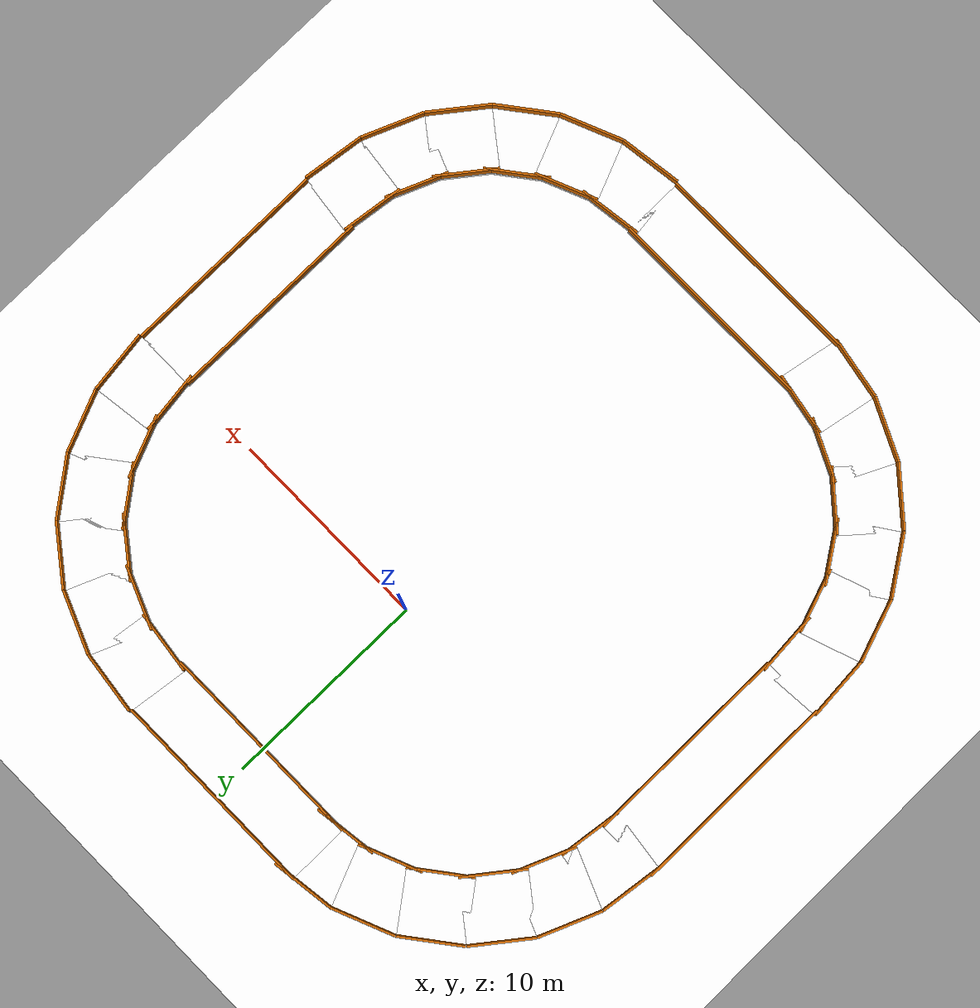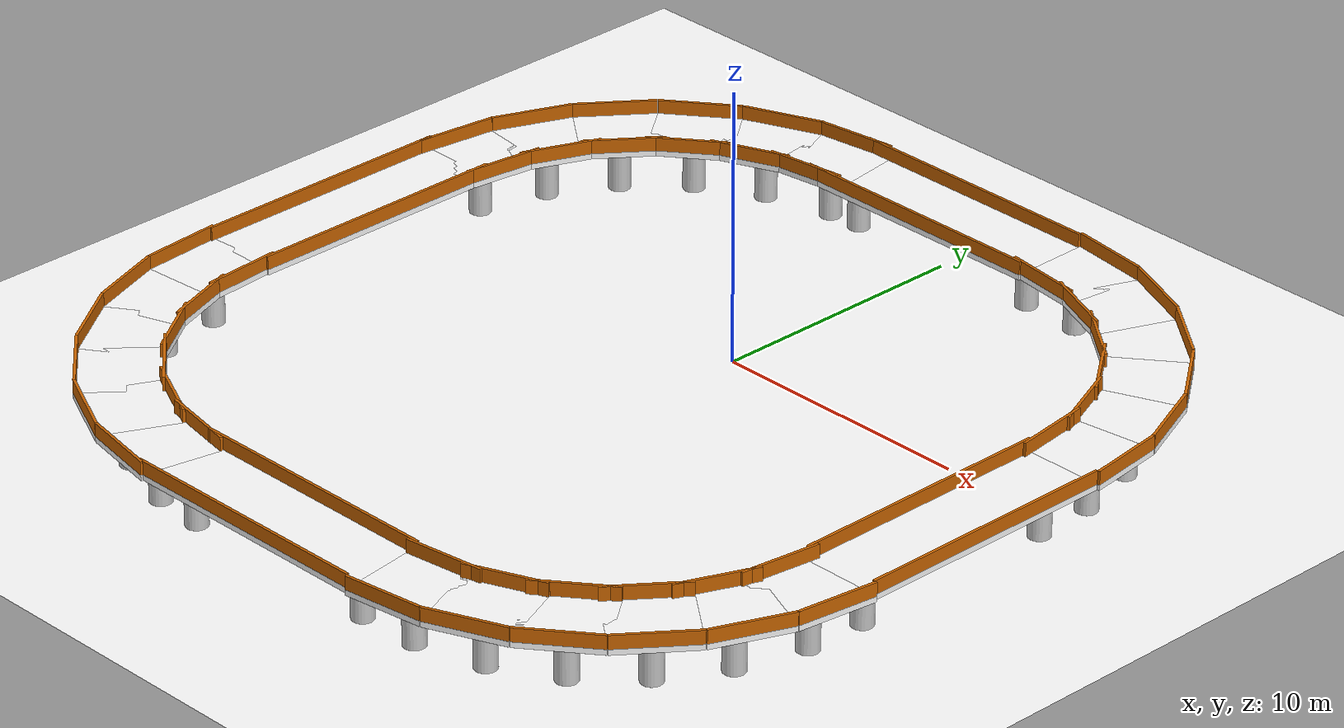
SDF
<?xml version="1.0" ?>
<sdf version="1.8">
  <world name="car_track_world">

    <!-- Core Engine Plugins -->
    <plugin filename="gz-sim-physics-system" name="gz::sim::systems::Physics"/>
    <plugin filename="gz-sim-scene-broadcaster-system" name="gz::sim::systems::SceneBroadcaster"/>
    <plugin filename="gz-sim-user-commands-system" name="gz::sim::systems::UserCommands"/>
    <plugin filename="gz-sim-sensors-system" name="gz::sim::systems::Sensors">
        <render_engine>ogre2</render_engine>
    </plugin>

    <!-- 1. Physics Configuration -->
    <physics name="1ms" type="ode">
      <max_step_size>0.001</max_step_size>
      <real_time_factor>1.0</real_time_factor>
      <gravity>0 0 -9.80665</gravity>
    </physics>

    <!-- 2. Scene Environment -->
    <scene>
      <ambient>0.6 0.6 0.6 1</ambient>
      <background>0.7 0.7 0.7 1</background>
      <shadows>true</shadows>
      <sky>
        <clouds>
          <speed>12</speed>
        </clouds>
      </sky>
    </scene>

    <!-- 3. Global Illumination -->
    <light type="directional" name="main_sun">
      <cast_shadows>true</cast_shadows>
      <pose>0 0 10 0 0 0</pose>
      <diffuse>0.8 0.8 0.8 1</diffuse>
      <specular>0.2 0.2 0.2 1</specular>
      <direction>-0.5 0.1 -0.9</direction>
    </light>

    <!-- 4. Base Ground Plane -->
    <model name="ground_plane">
      <static>true</static>
      <link name="link">
        <collision name="collision">
          <geometry>
            <plane>
              <normal>0 0 1</normal>
              <size>100 100</size>
            </plane>
          </geometry>
        </collision>
        <visual name="visual">
          <geometry>
            <plane>
              <normal>0 0 1</normal>
              <size>100 100</size>
            </plane>
          </geometry>
          <material>
            <ambient>1.0 1.0 1.0 1</ambient>
            <diffuse>1.0 1.0 1.0 1</diffuse>
            <specular>0.1 0.1 0.1 1</specular>
          </material>
        </visual>
      </link>
    </model>

    <!-- Shared Track PBR Material macro logic represented natively -->

    <!-- 6. Bridge 1 -->
    <model name="simple_bridge">
      <pose>0 10 0.0 0 0 0</pose>
      <static>true</static>
      <link name="bridge_surface">
        <pose>0 0 2.0 0 0 0</pose>
        <collision name="surface_col">
          <geometry><box><size>10.0 3.0 0.2</size></box></geometry>
        </collision>
        <visual name="surface_vis">
          <geometry><box><size>10.0 3.0 0.2</size></box></geometry>
          <material>
            <ambient>1.0 1.0 1.0 1</ambient>
            <diffuse>1.0 1.0 1.0 1</diffuse>
            <pbr>
              <metal>
                <albedo_map>lane_texture.png</albedo_map>
                <roughness>0.8</roughness>
                <metalness>0.0</metalness>
              </metal>
            </pbr>
          </material>
        </visual>
        <!-- Walls -->
        <collision name="wall_left_col"><pose>0 1.45 0.35 0 0 0</pose><geometry><box><size>10.0 0.1 0.5</size></box></geometry></collision>
        <visual name="wall_left_vis"><pose>0 1.45 0.35 0 0 0</pose><geometry><box><size>10.0 0.1 0.5</size></box></geometry><material><ambient>0.8 0.4 0.0 1</ambient><diffuse>0.8 0.4 0.0 1</diffuse></material></visual>
        <collision name="wall_right_col"><pose>0 -1.45 0.35 0 0 0</pose><geometry><box><size>10.0 0.1 0.5</size></box></geometry></collision>
        <visual name="wall_right_vis"><pose>0 -1.45 0.35 0 0 0</pose><geometry><box><size>10.0 0.1 0.5</size></box></geometry><material><ambient>0.8 0.4 0.0 1</ambient><diffuse>0.8 0.4 0.0 1</diffuse></material></visual>
      </link>
      <link name="pillar_left">
        <pose>-4.0 0 1.0 0 0 0</pose>
        <collision name="pillar1_col"><geometry><cylinder><radius>0.4</radius><length>2.0</length></cylinder></geometry></collision>
        <visual name="pillar1_vis"><geometry><cylinder><radius>0.4</radius><length>2.0</length></cylinder></geometry><material><ambient>0.8 0.8 0.8 1</ambient><diffuse>0.8 0.8 0.8 1</diffuse></material></visual>
      </link>
      <link name="pillar_right">
        <pose>4.0 0 1.0 0 0 0</pose>
        <collision name="pillar2_col"><geometry><cylinder><radius>0.4</radius><length>2.0</length></cylinder></geometry></collision>
        <visual name="pillar2_vis"><geometry><cylinder><radius>0.4</radius><length>2.0</length></cylinder></geometry><material><ambient>0.8 0.8 0.8 1</ambient><diffuse>0.8 0.8 0.8 1</diffuse></material></visual>
      </link>
    </model>

    <!-- 7. High-Resolution Elevated Curve 1 -->
    <model name="reinforced_curve_track">
      <static>true</static>
      <pose>5 0 0 0 0 0</pose>
      <!-- Loop through segment links using PBR visual properties -->
      <link name="curve_seg_1">
        <pose>9.914 1.305 2.0 0 0 1.7017</pose>
        <collision name="col_1"><geometry><box><size>3.0 3.0 0.2</size></box></geometry></collision>
        <visual name="vis_1">
          <geometry><box><size>3.0 3.0 0.2</size></box></geometry>
          <material><ambient>1 1 1 1</ambient><diffuse>1 1 1 1</diffuse><pbr><metal><albedo_map>lane_texture.png</albedo_map><roughness>0.8</roughness><metalness>0.0</metalness></metal></pbr></material>
        </visual>
        <collision name="wall_left_col"><pose>0 1.45 0.35 0 0 0</pose><geometry><box><size>3.0 0.1 0.5</size></box></geometry></collision>
        <visual name="wall_left_vis"><pose>0 1.45 0.35 0 0 0</pose><geometry><box><size>3.0 0.1 0.5</size></box></geometry><material><ambient>0.8 0.4 0.0 1</ambient><diffuse>0.8 0.4 0.0 1</diffuse></material></visual>
        <collision name="wall_right_col"><pose>0 -1.45 0.35 0 0 0</pose><geometry><box><size>3.0 0.1 0.5</size></box></geometry></collision>
        <visual name="wall_right_vis"><pose>0 -1.45 0.35 0 0 0</pose><geometry><box><size>3.0 0.1 0.5</size></box></geometry><material><ambient>0.8 0.4 0.0 1</ambient><diffuse>0.8 0.4 0.0 1</diffuse></material></visual>
      </link>
      <link name="pillar_1"><pose>9.914 1.305 1.0 0 0 0</pose><collision name="pcol_1"><geometry><cylinder><radius>0.4</radius><length>2.0</length></cylinder></geometry></collision><visual name="pvis_1"><geometry><cylinder><radius>0.4</radius><length>2.0</length></cylinder></geometry><material><ambient>0.8 0.8 0.8 1</ambient><diffuse>0.8 0.8 0.8 1</diffuse></material></visual></link>
      <link name="curve_seg_2">
        <pose>9.239 3.827 2.0 0 0 1.9635</pose>
        <collision name="col_2"><geometry><box><size>3.0 3.0 0.2</size></box></geometry></collision>
        <visual name="vis_2">
          <geometry><box><size>3.0 3.0 0.2</size></box></geometry>
          <material><ambient>1 1 1 1</ambient><diffuse>1 1 1 1</diffuse><pbr><metal><albedo_map>lane_texture.png</albedo_map><roughness>0.8</roughness><metalness>0.0</metalness></metal></pbr></material>
        </visual>
        <collision name="wall_left_col"><pose>0 1.45 0.35 0 0 0</pose><geometry><box><size>3.0 0.1 0.5</size></box></geometry></collision>
        <visual name="wall_left_vis"><pose>0 1.45 0.35 0 0 0</pose><geometry><box><size>3.0 0.1 0.5</size></box></geometry><material><ambient>0.8 0.4 0.0 1</ambient><diffuse>0.8 0.4 0.0 1</diffuse></material></visual>
        <collision name="wall_right_col"><pose>0 -1.45 0.35 0 0 0</pose><geometry><box><size>3.0 0.1 0.5</size></box></geometry></collision>
        <visual name="wall_right_vis"><pose>0 -1.45 0.35 0 0 0</pose><geometry><box><size>3.0 0.1 0.5</size></box></geometry><material><ambient>0.8 0.4 0.0 1</ambient><diffuse>0.8 0.4 0.0 1</diffuse></material></visual>
      </link>
      <link name="pillar_2"><pose>9.239 3.827 1.0 0 0 0</pose><collision name="pcol_2"><geometry><cylinder><radius>0.4</radius><length>2.0</length></cylinder></geometry></collision><visual name="pvis_2"><geometry><cylinder><radius>0.4</radius><length>2.0</length></cylinder></geometry><material><ambient>0.8 0.8 0.8 1</ambient><diffuse>0.8 0.8 0.8 1</diffuse></material></visual></link>
      <link name="curve_seg_3">
        <pose>7.934 6.088 2.0 0 0 2.2253</pose>
        <collision name="col_3"><geometry><box><size>3.0 3.0 0.2</size></box></geometry></collision>
        <visual name="vis_3">
          <geometry><box><size>3.0 3.0 0.2</size></box></geometry>
          <material><ambient>1 1 1 1</ambient><diffuse>1 1 1 1</diffuse><pbr><metal><albedo_map>lane_texture.png</albedo_map><roughness>0.8</roughness><metalness>0.0</metalness></metal></pbr></material>
        </visual>
        <collision name="wall_left_col"><pose>0 1.45 0.35 0 0 0</pose><geometry><box><size>3.0 0.1 0.5</size></box></geometry></collision>
        <visual name="wall_left_vis"><pose>0 1.45 0.35 0 0 0</pose><geometry><box><size>3.0 0.1 0.5</size></box></geometry><material><ambient>0.8 0.4 0.0 1</ambient><diffuse>0.8 0.4 0.0 1</diffuse></material></visual>
        <collision name="wall_right_col"><pose>0 -1.45 0.35 0 0 0</pose><geometry><box><size>3.0 0.1 0.5</size></box></geometry></collision>
        <visual name="wall_right_vis"><pose>0 -1.45 0.35 0 0 0</pose><geometry><box><size>3.0 0.1 0.5</size></box></geometry><material><ambient>0.8 0.4 0.0 1</ambient><diffuse>0.8 0.4 0.0 1</diffuse></material></visual>
      </link>
      <link name="pillar_3"><pose>7.934 6.088 1.0 0 0 0</pose><collision name="pcol_3"><geometry><cylinder><radius>0.4</radius><length>2.0</length></cylinder></geometry></collision><visual name="pvis_3"><geometry><cylinder><radius>0.4</radius><length>2.0</length></cylinder></geometry><material><ambient>0.8 0.8 0.8 1</ambient><diffuse>0.8 0.8 0.8 1</diffuse></material></visual></link>
      <link name="curve_seg_4">
        <pose>6.088 7.934 2.0 0 0 2.4871</pose>
        <collision name="col_4"><geometry><box><size>3.0 3.0 0.2</size></box></geometry></collision>
        <visual name="vis_4">
          <geometry><box><size>3.0 3.0 0.2</size></box></geometry>
          <material><ambient>1 1 1 1</ambient><diffuse>1 1 1 1</diffuse><pbr><metal><albedo_map>lane_texture.png</albedo_map><roughness>0.8</roughness><metalness>0.0</metalness></metal></pbr></material>
        </visual>
        <collision name="wall_left_col"><pose>0 1.45 0.35 0 0 0</pose><geometry><box><size>3.0 0.1 0.5</size></box></geometry></collision>
        <visual name="wall_left_vis"><pose>0 1.45 0.35 0 0 0</pose><geometry><box><size>3.0 0.1 0.5</size></box></geometry><material><ambient>0.8 0.4 0.0 1</ambient><diffuse>0.8 0.4 0.0 1</diffuse></material></visual>
        <collision name="wall_right_col"><pose>0 -1.45 0.35 0 0 0</pose><geometry><box><size>3.0 0.1 0.5</size></box></geometry></collision>
        <visual name="wall_right_vis"><pose>0 -1.45 0.35 0 0 0</pose><geometry><box><size>3.0 0.1 0.5</size></box></geometry><material><ambient>0.8 0.4 0.0 1</ambient><diffuse>0.8 0.4 0.0 1</diffuse></material></visual>
      </link>
      <link name="pillar_4"><pose>6.088 7.934 1.0 0 0 0</pose><collision name="pcol_4"><geometry><cylinder><radius>0.4</radius><length>2.0</length></cylinder></geometry></collision><visual name="pvis_4"><geometry><cylinder><radius>0.4</radius><length>2.0</length></cylinder></geometry><material><ambient>0.8 0.8 0.8 1</ambient><diffuse>0.8 0.8 0.8 1</diffuse></material></visual></link>
      <link name="curve_seg_5">
        <pose>3.827 9.239 2.0 0 0 2.7489</pose>
        <collision name="col_5"><geometry><box><size>3.0 3.0 0.2</size></box></geometry></collision>
        <visual name="vis_5">
          <geometry><box><size>3.0 3.0 0.2</size></box></geometry>
          <material><ambient>1 1 1 1</ambient><diffuse>1 1 1 1</diffuse><pbr><metal><albedo_map>lane_texture.png</albedo_map><roughness>0.8</roughness><metalness>0.0</metalness></metal></pbr></material>
        </visual>
        <collision name="wall_left_col"><pose>0 1.45 0.35 0 0 0</pose><geometry><box><size>3.0 0.1 0.5</size></box></geometry></collision>
        <visual name="wall_left_vis"><pose>0 1.45 0.35 0 0 0</pose><geometry><box><size>3.0 0.1 0.5</size></box></geometry><material><ambient>0.8 0.4 0.0 1</ambient><diffuse>0.8 0.4 0.0 1</diffuse></material></visual>
        <collision name="wall_right_col"><pose>0 -1.45 0.35 0 0 0</pose><geometry><box><size>3.0 0.1 0.5</size></box></geometry></collision>
        <visual name="wall_right_vis"><pose>0 -1.45 0.35 0 0 0</pose><geometry><box><size>3.0 0.1 0.5</size></box></geometry><material><ambient>0.8 0.4 0.0 1</ambient><diffuse>0.8 0.4 0.0 1</diffuse></material></visual>
      </link>
      <link name="pillar_5"><pose>3.827 9.239 1.0 0 0 0</pose><collision name="pcol_5"><geometry><cylinder><radius>0.4</radius><length>2.0</length></cylinder></geometry></collision><visual name="pvis_5"><geometry><cylinder><radius>0.4</radius><length>2.0</length></cylinder></geometry><material><ambient>0.8 0.8 0.8 1</ambient><diffuse>0.8 0.8 0.8 1</diffuse></material></visual></link>
      <link name="curve_seg_6">
        <pose>1.305 9.914 2.0 0 0 3.0107</pose>
        <collision name="col_6"><geometry><box><size>3.0 3.0 0.2</size></box></geometry></collision>
        <visual name="vis_6">
          <geometry><box><size>3.0 3.0 0.2</size></box></geometry>
          <material><ambient>1 1 1 1</ambient><diffuse>1 1 1 1</diffuse><pbr><metal><albedo_map>lane_texture.png</albedo_map><roughness>0.8</roughness><metalness>0.0</metalness></metal></pbr></material>
        </visual>
        <collision name="wall_left_col"><pose>0 1.45 0.35 0 0 0</pose><geometry><box><size>3.0 0.1 0.5</size></box></geometry></collision>
        <visual name="wall_left_vis"><pose>0 1.45 0.35 0 0 0</pose><geometry><box><size>3.0 0.1 0.5</size></box></geometry><material><ambient>0.8 0.4 0.0 1</ambient><diffuse>0.8 0.4 0.0 1</diffuse></material></visual>
        <collision name="wall_right_col"><pose>0 -1.45 0.35 0 0 0</pose><geometry><box><size>3.0 0.1 0.5</size></box></geometry></collision>
        <visual name="wall_right_vis"><pose>0 -1.45 0.35 0 0 0</pose><geometry><box><size>3.0 0.1 0.5</size></box></geometry><material><ambient>0.8 0.4 0.0 1</ambient><diffuse>0.8 0.4 0.0 1</diffuse></material></visual>
      </link>
      <link name="pillar_6"><pose>1.305 9.914 1.0 0 0 0</pose><collision name="pcol_6"><geometry><cylinder><radius>0.4</radius><length>2.0</length></cylinder></geometry></collision><visual name="pvis_6"><geometry><cylinder><radius>0.4</radius><length>2.0</length></cylinder></geometry><material><ambient>0.8 0.8 0.8 1</ambient><diffuse>0.8 0.8 0.8 1</diffuse></material></visual></link>
    </model>

    <!-- 8. Bridge 2 -->
    <model name="simple_bridge2">
      <pose>15 -5 0.0 0 0 1.57</pose>
      <static>true</static>
      <link name="bridge_surface2">
        <pose>0 0 2.0 0 0 0</pose>
        <collision name="surface_col2"><geometry><box><size>10.0 3.0 0.2</size></box></geometry></collision>
        <visual name="surface_vis2">
          <geometry><box><size>10.0 3.0 0.2</size></box></geometry>
          <material><ambient>1 1 1 1</ambient><diffuse>1 1 1 1</diffuse><pbr><metal><albedo_map>lane_texture.png</albedo_map><roughness>0.8</roughness><metalness>0.0</metalness></metal></pbr></material>
        </visual>
        <collision name="wall_left_col"><pose>0 1.45 0.35 0 0 0</pose><geometry><box><size>10.0 0.1 0.5</size></box></geometry></collision>
        <visual name="wall_left_vis"><pose>0 1.45 0.35 0 0 0</pose><geometry><box><size>10.0 0.1 0.5</size></box></geometry><material><ambient>0.8 0.4 0.0 1</ambient><diffuse>0.8 0.4 0.0 1</diffuse></material></visual>
        <collision name="wall_right_col"><pose>0 -1.45 0.35 0 0 0</pose><geometry><box><size>10.0 0.1 0.5</size></box></geometry></collision>
        <visual name="wall_right_vis"><pose>0 -1.45 0.35 0 0 0</pose><geometry><box><size>10.0 0.1 0.5</size></box></geometry><material><ambient>0.8 0.4 0.0 1</ambient><diffuse>0.8 0.4 0.0 1</diffuse></material></visual>
      </link>
      <link name="pillar_left2">
        <pose>-4.0 0 1.0 0 0 0</pose>
        <collision name="pillar1_col2"><geometry><cylinder><radius>0.4</radius><length>2.0</length></cylinder></geometry></collision>
        <visual name="pillar1_vis2"><geometry><cylinder><radius>0.4</radius><length>2.0</length></cylinder></geometry><material><ambient>0.8 0.8 0.8 1</ambient><diffuse>0.8 0.8 0.8 1</diffuse></material></visual>
      </link>
      <link name="pillar_right2">
        <pose>4.0 0 1.0 0 0 0</pose>
        <collision name="pillar2_col2"><geometry><cylinder><radius>0.4</radius><length>2.0</length></cylinder></geometry></collision>
        <visual name="pillar2_vis2"><geometry><cylinder><radius>0.4</radius><length>2.0</length></cylinder></geometry><material><ambient>0.8 0.8 0.8 1</ambient><diffuse>0.8 0.8 0.8 1</diffuse></material></visual>
      </link>
    </model>

    <!-- 9. High-Resolution Elevated Curve 2 -->
    <model name="reinforced_curve_trackB">
      <static>true</static>
      <pose>5 -10 0 0 0 -1.57</pose>
      <link name="curve_seg_1">
        <pose>9.914 1.305 2.0 0 0 1.7017</pose>
        <collision name="col_1"><geometry><box><size>3.0 3.0 0.2</size></box></geometry></collision>
        <visual name="vis_1"><geometry><box><size>3.0 3.0 0.2</size></box></geometry><material><ambient>1 1 1 1</ambient><diffuse>1 1 1 1</diffuse><pbr><metal><albedo_map>lane_texture.png</albedo_map><roughness>0.8</roughness><metalness>0.0</metalness></metal></pbr></material></visual>
        <collision name="wall_left_col"><pose>0 1.45 0.35 0 0 0</pose><geometry><box><size>3.0 0.1 0.5</size></box></geometry></collision>
        <visual name="wall_left_vis"><pose>0 1.45 0.35 0 0 0</pose><geometry><box><size>3.0 0.1 0.5</size></box></geometry><material><ambient>0.8 0.4 0.0 1</ambient><diffuse>0.8 0.4 0.0 1</diffuse></material></visual>
        <collision name="wall_right_col"><pose>0 -1.45 0.35 0 0 0</pose><geometry><box><size>3.0 0.1 0.5</size></box></geometry></collision>
        <visual name="wall_right_vis"><pose>0 -1.45 0.35 0 0 0</pose><geometry><box><size>3.0 0.1 0.5</size></box></geometry><material><ambient>0.8 0.4 0.0 1</ambient><diffuse>0.8 0.4 0.0 1</diffuse></material></visual>
      </link>
      <link name="pillar_1"><pose>9.914 1.305 1.0 0 0 0</pose><collision name="pcol_1"><geometry><cylinder><radius>0.4</radius><length>2.0</length></cylinder></geometry></collision><visual name="pvis_1"><geometry><cylinder><radius>0.4</radius><length>2.0</length></cylinder></geometry><material><ambient>0.8 0.8 0.8 1</ambient><diffuse>0.8 0.8 0.8 1</diffuse></material></visual></link>
      <link name="curve_seg_2">
        <pose>9.239 3.827 2.0 0 0 1.9635</pose>
        <collision name="col_2"><geometry><box><size>3.0 3.0 0.2</size></box></geometry></collision>
        <visual name="vis_2"><geometry><box><size>3.0 3.0 0.2</size></box></geometry><material><ambient>1 1 1 1</ambient><diffuse>1 1 1 1</diffuse><pbr><metal><albedo_map>lane_texture.png</albedo_map><roughness>0.8</roughness><metalness>0.0</metalness></metal></pbr></material></visual>
        <collision name="wall_left_col"><pose>0 1.45 0.35 0 0 0</pose><geometry><box><size>3.0 0.1 0.5</size></box></geometry></collision>
        <visual name="wall_left_vis"><pose>0 1.45 0.35 0 0 0</pose><geometry><box><size>3.0 0.1 0.5</size></box></geometry><material><ambient>0.8 0.4 0.0 1</ambient><diffuse>0.8 0.4 0.0 1</diffuse></material></visual>
        <collision name="wall_right_col"><pose>0 -1.45 0.35 0 0 0</pose><geometry><box><size>3.0 0.1 0.5</size></box></geometry></collision>
        <visual name="wall_right_vis"><pose>0 -1.45 0.35 0 0 0</pose><geometry><box><size>3.0 0.1 0.5</size></box></geometry><material><ambient>0.8 0.4 0.0 1</ambient><diffuse>0.8 0.4 0.0 1</diffuse></material></visual>
      </link>
      <link name="pillar_2"><pose>9.239 3.827 1.0 0 0 0</pose><collision name="pcol_2"><geometry><cylinder><radius>0.4</radius><length>2.0</length></cylinder></geometry></collision><visual name="pvis_2"><geometry><cylinder><radius>0.4</radius><length>2.0</length></cylinder></geometry><material><ambient>0.8 0.8 0.8 1</ambient><diffuse>0.8 0.8 0.8 1</diffuse></material></visual></link>
      <link name="curve_seg_3">
        <pose>7.934 6.088 2.0 0 0 2.2253</pose>
        <collision name="col_3"><geometry><box><size>3.0 3.0 0.2</size></box></geometry></collision>
        <visual name="vis_3"><geometry><box><size>3.0 3.0 0.2</size></box></geometry><material><ambient>1 1 1 1</ambient><diffuse>1 1 1 1</diffuse><pbr><metal><albedo_map>lane_texture.png</albedo_map><roughness>0.8</roughness><metalness>0.0</metalness></metal></pbr></material></visual>
        <collision name="wall_left_col"><pose>0 1.45 0.35 0 0 0</pose><geometry><box><size>3.0 0.1 0.5</size></box></geometry></collision>
        <visual name="wall_left_vis"><pose>0 1.45 0.35 0 0 0</pose><geometry><box><size>3.0 0.1 0.5</size></box></geometry><material><ambient>0.8 0.4 0.0 1</ambient><diffuse>0.8 0.4 0.0 1</diffuse></material></visual>
        <collision name="wall_right_col"><pose>0 -1.45 0.35 0 0 0</pose><geometry><box><size>3.0 0.1 0.5</size></box></geometry></collision>
        <visual name="wall_right_vis"><pose>0 -1.45 0.35 0 0 0</pose><geometry><box><size>3.0 0.1 0.5</size></box></geometry><material><ambient>0.8 0.4 0.0 1</ambient><diffuse>0.8 0.4 0.0 1</diffuse></material></visual>
      </link>
      <link name="pillar_3"><pose>7.934 6.088 1.0 0 0 0</pose><collision name="pcol_3"><geometry><cylinder><radius>0.4</radius><length>2.0</length></cylinder></geometry></collision><visual name="pvis_3"><geometry><cylinder><radius>0.4</radius><length>2.0</length></cylinder></geometry><material><ambient>0.8 0.8 0.8 1</ambient><diffuse>0.8 0.8 0.8 1</diffuse></material></visual></link>
      <link name="curve_seg_4">
        <pose>6.088 7.934 2.0 0 0 2.4871</pose>
        <collision name="col_4"><geometry><box><size>3.0 3.0 0.2</size></box></geometry></collision>
        <visual name="vis_4"><geometry><box><size>3.0 3.0 0.2</size></box></geometry><material><ambient>1 1 1 1</ambient><diffuse>1 1 1 1</diffuse><pbr><metal><albedo_map>lane_texture.png</albedo_map><roughness>0.8</roughness><metalness>0.0</metalness></metal></pbr></material></visual>
        <collision name="wall_left_col"><pose>0 1.45 0.35 0 0 0</pose><geometry><box><size>3.0 0.1 0.5</size></box></geometry></collision>
        <visual name="wall_left_vis"><pose>0 1.45 0.35 0 0 0</pose><geometry><box><size>3.0 0.1 0.5</size></box></geometry><material><ambient>0.8 0.4 0.0 1</ambient><diffuse>0.8 0.4 0.0 1</diffuse></material></visual>
        <collision name="wall_right_col"><pose>0 -1.45 0.35 0 0 0</pose><geometry><box><size>3.0 0.1 0.5</size></box></geometry></collision>
        <visual name="wall_right_vis"><pose>0 -1.45 0.35 0 0 0</pose><geometry><box><size>3.0 0.1 0.5</size></box></geometry><material><ambient>0.8 0.4 0.0 1</ambient><diffuse>0.8 0.4 0.0 1</diffuse></material></visual>
      </link>
      <link name="pillar_4"><pose>6.088 7.934 1.0 0 0 0</pose><collision name="pcol_4"><geometry><cylinder><radius>0.4</radius><length>2.0</length></cylinder></geometry></collision><visual name="pvis_4"><geometry><cylinder><radius>0.4</radius><length>2.0</length></cylinder></geometry><material><ambient>0.8 0.8 0.8 1</ambient><diffuse>0.8 0.8 0.8 1</diffuse></material></visual></link>
      <link name="curve_seg_5">
        <pose>3.827 9.239 2.0 0 0 2.7489</pose>
        <collision name="col_5"><geometry><box><size>3.0 3.0 0.2</size></box></geometry></collision>
        <visual name="vis_5"><geometry><box><size>3.0 3.0 0.2</size></box></geometry><material><ambient>1 1 1 1</ambient><diffuse>1 1 1 1</diffuse><pbr><metal><albedo_map>lane_texture.png</albedo_map><roughness>0.8</roughness><metalness>0.0</metalness></metal></pbr></material></visual>
        <collision name="wall_left_col"><pose>0 1.45 0.35 0 0 0</pose><geometry><box><size>3.0 0.1 0.5</size></box></geometry></collision>
        <visual name="wall_left_vis"><pose>0 1.45 0.35 0 0 0</pose><geometry><box><size>3.0 0.1 0.5</size></box></geometry><material><ambient>0.8 0.4 0.0 1</ambient><diffuse>0.8 0.4 0.0 1</diffuse></material></visual>
        <collision name="wall_right_col"><pose>0 -1.45 0.35 0 0 0</pose><geometry><box><size>3.0 0.1 0.5</size></box></geometry></collision>
        <visual name="wall_right_vis"><pose>0 -1.45 0.35 0 0 0</pose><geometry><box><size>3.0 0.1 0.5</size></box></geometry><material><ambient>0.8 0.4 0.0 1</ambient><diffuse>0.8 0.4 0.0 1</diffuse></material></visual>
      </link>
      <link name="pillar_5"><pose>3.827 9.239 1.0 0 0 0</pose><collision name="pcol_5"><geometry><cylinder><radius>0.4</radius><length>2.0</length></cylinder></geometry></collision><visual name="pvis_5"><geometry><cylinder><radius>0.4</radius><length>2.0</length></cylinder></geometry><material><ambient>0.8 0.8 0.8 1</ambient><diffuse>0.8 0.8 0.8 1</diffuse></material></visual></link>
      <link name="curve_seg_6">
        <pose>1.305 9.914 2.0 0 0 3.0107</pose>
        <collision name="col_6"><geometry><box><size>3.0 3.0 0.2</size></box></geometry></collision>
        <visual name="vis_6"><geometry><box><size>3.0 3.0 0.2</size></box></geometry><material><ambient>1 1 1 1</ambient><diffuse>1 1 1 1</diffuse><pbr><metal><albedo_map>lane_texture.png</albedo_map><roughness>0.8</roughness><metalness>0.0</metalness></metal></pbr></material></visual>
        <collision name="wall_left_col"><pose>0 1.45 0.35 0 0 0</pose><geometry><box><size>3.0 0.1 0.5</size></box></geometry></collision>
        <visual name="wall_left_vis"><pose>0 1.45 0.35 0 0 0</pose><geometry><box><size>3.0 0.1 0.5</size></box></geometry><material><ambient>0.8 0.4 0.0 1</ambient><diffuse>0.8 0.4 0.0 1</diffuse></material></visual>
        <collision name="wall_right_col"><pose>0 -1.45 0.35 0 0 0</pose><geometry><box><size>3.0 0.1 0.5</size></box></geometry></collision>
        <visual name="wall_right_vis"><pose>0 -1.45 0.35 0 0 0</pose><geometry><box><size>3.0 0.1 0.5</size></box></geometry><material><ambient>0.8 0.4 0.0 1</ambient><diffuse>0.8 0.4 0.0 1</diffuse></material></visual>
      </link>
      <link name="pillar_6"><pose>1.305 9.914 1.0 0 0 0</pose><collision name="pcol_6"><geometry><cylinder><radius>0.4</radius><length>2.0</length></cylinder></geometry></collision><visual name="pvis_6"><geometry><cylinder><radius>0.4</radius><length>2.0</length></cylinder></geometry><material><ambient>0.8 0.8 0.8 1</ambient><diffuse>0.8 0.8 0.8 1</diffuse></material></visual></link>
    </model>

    <!-- 10. Bridge 3 -->
    <model name="simple_bridge3">
      <pose>0 -20 0.0 0 0 0</pose>
      <static>true</static>
      <link name="bridge_surface2">
        <pose>0 0 2.0 0 0 0</pose>
        <collision name="surface_col2"><geometry><box><size>10.0 3.0 0.2</size></box></geometry></collision>
        <visual name="surface_vis2">
          <geometry><box><size>10.0 3.0 0.2</size></box></geometry>
          <material><ambient>1 1 1 1</ambient><diffuse>1 1 1 1</diffuse><pbr><metal><albedo_map>lane_texture.png</albedo_map><roughness>0.8</roughness><metalness>0.0</metalness></metal></pbr></material>
        </visual>
        <collision name="wall_left_col"><pose>0 1.45 0.35 0 0 0</pose><geometry><box><size>10.0 0.1 0.5</size></box></geometry></collision>
        <visual name="wall_left_vis"><pose>0 1.45 0.35 0 0 0</pose><geometry><box><size>10.0 0.1 0.5</size></box></geometry><material><ambient>0.8 0.4 0.0 1</ambient><diffuse>0.8 0.4 0.0 1</diffuse></material></visual>
        <collision name="wall_right_col"><pose>0 -1.45 0.35 0 0 0</pose><geometry><box><size>10.0 0.1 0.5</size></box></geometry></collision>
        <visual name="wall_right_vis"><pose>0 -1.45 0.35 0 0 0</pose><geometry><box><size>10.0 0.1 0.5</size></box></geometry><material><ambient>0.8 0.4 0.0 1</ambient><diffuse>0.8 0.4 0.0 1</diffuse></material></visual>
      </link>
      <link name="pillar_left2">
        <pose>-4.0 0 1.0 0 0 0</pose>
        <collision name="pillar1_col2"><geometry><cylinder><radius>0.4</radius><length>2.0</length></cylinder></geometry></collision>
        <visual name="pillar1_vis2"><geometry><cylinder><radius>0.4</radius><length>2.0</length></cylinder></geometry><material><ambient>0.8 0.8 0.8 1</ambient><diffuse>0.8 0.8 0.8 1</diffuse></material></visual>
      </link>
      <link name="pillar_right2">
        <pose>4.0 0 1.0 0 0 0</pose>
        <collision name="pillar2_col2"><geometry><cylinder><radius>0.4</radius><length>2.0</length></cylinder></geometry></collision>
        <visual name="pillar2_vis2"><geometry><cylinder><radius>0.4</radius><length>2.0</length></cylinder></geometry><material><ambient>0.8 0.8 0.8 1</ambient><diffuse>0.8 0.8 0.8 1</diffuse></material></visual>
      </link>
    </model>

    <!-- 11. High-Resolution Elevated Curve 3 -->
    <model name="reinforced_curve_trackC">
      <static>true</static>
      <pose>-4.1 -10 0 0 0 -3.2</pose>
      <link name="curve_seg_1">
        <pose>9.914 1.305 2.0 0 0 1.7017</pose>
        <collision name="col_1"><geometry><box><size>3.0 3.0 0.2</size></box></geometry></collision>
        <visual name="vis_1"><geometry><box><size>3.0 3.0 0.2</size></box></geometry><material><ambient>1 1 1 1</ambient><diffuse>1 1 1 1</diffuse><pbr><metal><albedo_map>lane_texture.png</albedo_map><roughness>0.8</roughness><metalness>0.0</metalness></metal></pbr></material></visual>
        <collision name="wall_left_col"><pose>0 1.45 0.35 0 0 0</pose><geometry><box><size>3.0 0.1 0.5</size></box></geometry></collision>
        <visual name="wall_left_vis"><pose>0 1.45 0.35 0 0 0</pose><geometry><box><size>3.0 0.1 0.5</size></box></geometry><material><ambient>0.8 0.4 0.0 1</ambient><diffuse>0.8 0.4 0.0 1</diffuse></material></visual>
        <collision name="wall_right_col"><pose>0 -1.45 0.35 0 0 0</pose><geometry><box><size>3.0 0.1 0.5</size></box></geometry></collision>
        <visual name="wall_right_vis"><pose>0 -1.45 0.35 0 0 0</pose><geometry><box><size>3.0 0.1 0.5</size></box></geometry><material><ambient>0.8 0.4 0.0 1</ambient><diffuse>0.8 0.4 0.0 1</diffuse></material></visual>
      </link>
      <link name="pillar_1"><pose>9.914 1.305 1.0 0 0 0</pose><collision name="pcol_1"><geometry><cylinder><radius>0.4</radius><length>2.0</length></cylinder></geometry></collision><visual name="pvis_1"><geometry><cylinder><radius>0.4</radius><length>2.0</length></cylinder></geometry><material><ambient>0.8 0.8 0.8 1</ambient><diffuse>0.8 0.8 0.8 1</diffuse></material></visual></link>
      <link name="curve_seg_2">
        <pose>9.239 3.827 2.0 0 0 1.9635</pose>
        <collision name="col_2"><geometry><box><size>3.0 3.0 0.2</size></box></geometry></collision>
        <visual name="vis_2"><geometry><box><size>3.0 3.0 0.2</size></box></geometry><material><ambient>1 1 1 1</ambient><diffuse>1 1 1 1</diffuse><pbr><metal><albedo_map>lane_texture.png</albedo_map><roughness>0.8</roughness><metalness>0.0</metalness></metal></pbr></material></visual>
        <collision name="wall_left_col"><pose>0 1.45 0.35 0 0 0</pose><geometry><box><size>3.0 0.1 0.5</size></box></geometry></collision>
        <visual name="wall_left_vis"><pose>0 1.45 0.35 0 0 0</pose><geometry><box><size>3.0 0.1 0.5</size></box></geometry><material><ambient>0.8 0.4 0.0 1</ambient><diffuse>0.8 0.4 0.0 1</diffuse></material></visual>
        <collision name="wall_right_col"><pose>0 -1.45 0.35 0 0 0</pose><geometry><box><size>3.0 0.1 0.5</size></box></geometry></collision>
        <visual name="wall_right_vis"><pose>0 -1.45 0.35 0 0 0</pose><geometry><box><size>3.0 0.1 0.5</size></box></geometry><material><ambient>0.8 0.4 0.0 1</ambient><diffuse>0.8 0.4 0.0 1</diffuse></material></visual>
      </link>
      <link name="pillar_2"><pose>9.239 3.827 1.0 0 0 0</pose><collision name="pcol_2"><geometry><cylinder><radius>0.4</radius><length>2.0</length></cylinder></geometry></collision><visual name="pvis_2"><geometry><cylinder><radius>0.4</radius><length>2.0</length></cylinder></geometry><material><ambient>0.8 0.8 0.8 1</ambient><diffuse>0.8 0.8 0.8 1</diffuse></material></visual></link>
      <link name="curve_seg_3">
        <pose>7.934 6.088 2.0 0 0 2.2253</pose>
        <collision name="col_3"><geometry><box><size>3.0 3.0 0.2</size></box></geometry></collision>
        <visual name="vis_3"><geometry><box><size>3.0 3.0 0.2</size></box></geometry><material><ambient>1 1 1 1</ambient><diffuse>1 1 1 1</diffuse><pbr><metal><albedo_map>lane_texture.png</albedo_map><roughness>0.8</roughness><metalness>0.0</metalness></metal></pbr></material></visual>
        <collision name="wall_left_col"><pose>0 1.45 0.35 0 0 0</pose><geometry><box><size>3.0 0.1 0.5</size></box></geometry></collision>
        <visual name="wall_left_vis"><pose>0 1.45 0.35 0 0 0</pose><geometry><box><size>3.0 0.1 0.5</size></box></geometry><material><ambient>0.8 0.4 0.0 1</ambient><diffuse>0.8 0.4 0.0 1</diffuse></material></visual>
        <collision name="wall_right_col"><pose>0 -1.45 0.35 0 0 0</pose><geometry><box><size>3.0 0.1 0.5</size></box></geometry></collision>
        <visual name="wall_right_vis"><pose>0 -1.45 0.35 0 0 0</pose><geometry><box><size>3.0 0.1 0.5</size></box></geometry><material><ambient>0.8 0.4 0.0 1</ambient><diffuse>0.8 0.4 0.0 1</diffuse></material></visual>
      </link>
      <link name="pillar_3"><pose>7.934 6.088 1.0 0 0 0</pose><collision name="pcol_3"><geometry><cylinder><radius>0.4</radius><length>2.0</length></cylinder></geometry></collision><visual name="pvis_3"><geometry><cylinder><radius>0.4</radius><length>2.0</length></cylinder></geometry><material><ambient>0.8 0.8 0.8 1</ambient><diffuse>0.8 0.8 0.8 1</diffuse></material></visual></link>
      <link name="curve_seg_4">
        <pose>6.088 7.934 2.0 0 0 2.4871</pose>
        <collision name="col_4"><geometry><box><size>3.0 3.0 0.2</size></box></geometry></collision>
        <visual name="vis_4"><geometry><box><size>3.0 3.0 0.2</size></box></geometry><material><ambient>1 1 1 1</ambient><diffuse>1 1 1 1</diffuse><pbr><metal><albedo_map>lane_texture.png</albedo_map><roughness>0.8</roughness><metalness>0.0</metalness></metal></pbr></material></visual>
        <collision name="wall_left_col"><pose>0 1.45 0.35 0 0 0</pose><geometry><box><size>3.0 0.1 0.5</size></box></geometry></collision>
        <visual name="wall_left_vis"><pose>0 1.45 0.35 0 0 0</pose><geometry><box><size>3.0 0.1 0.5</size></box></geometry><material><ambient>0.8 0.4 0.0 1</ambient><diffuse>0.8 0.4 0.0 1</diffuse></material></visual>
        <collision name="wall_right_col"><pose>0 -1.45 0.35 0 0 0</pose><geometry><box><size>3.0 0.1 0.5</size></box></geometry></collision>
        <visual name="wall_right_vis"><pose>0 -1.45 0.35 0 0 0</pose><geometry><box><size>3.0 0.1 0.5</size></box></geometry><material><ambient>0.8 0.4 0.0 1</ambient><diffuse>0.8 0.4 0.0 1</diffuse></material></visual>
      </link>
      <link name="pillar_4"><pose>6.088 7.934 1.0 0 0 0</pose><collision name="pcol_4"><geometry><cylinder><radius>0.4</radius><length>2.0</length></cylinder></geometry></collision><visual name="pvis_4"><geometry><cylinder><radius>0.4</radius><length>2.0</length></cylinder></geometry><material><ambient>0.8 0.8 0.8 1</ambient><diffuse>0.8 0.8 0.8 1</diffuse></material></visual></link>
      <link name="curve_seg_5">
        <pose>3.827 9.239 2.0 0 0 2.7489</pose>
        <collision name="col_5"><geometry><box><size>3.0 3.0 0.2</size></box></geometry></collision>
        <visual name="vis_5"><geometry><box><size>3.0 3.0 0.2</size></box></geometry><material><ambient>1 1 1 1</ambient><diffuse>1 1 1 1</diffuse><pbr><metal><albedo_map>lane_texture.png</albedo_map><roughness>0.8</roughness><metalness>0.0</metalness></metal></pbr></material></visual>
        <collision name="wall_left_col"><pose>0 1.45 0.35 0 0 0</pose><geometry><box><size>3.0 0.1 0.5</size></box></geometry></collision>
        <visual name="wall_left_vis"><pose>0 1.45 0.35 0 0 0</pose><geometry><box><size>3.0 0.1 0.5</size></box></geometry><material><ambient>0.8 0.4 0.0 1</ambient><diffuse>0.8 0.4 0.0 1</diffuse></material></visual>
        <collision name="wall_right_col"><pose>0 -1.45 0.35 0 0 0</pose><geometry><box><size>3.0 0.1 0.5</size></box></geometry></collision>
        <visual name="wall_right_vis"><pose>0 -1.45 0.35 0 0 0</pose><geometry><box><size>3.0 0.1 0.5</size></box></geometry><material><ambient>0.8 0.4 0.0 1</ambient><diffuse>0.8 0.4 0.0 1</diffuse></material></visual>
      </link>
      <link name="pillar_5"><pose>3.827 9.239 1.0 0 0 0</pose><collision name="pcol_5"><geometry><cylinder><radius>0.4</radius><length>2.0</length></cylinder></geometry></collision><visual name="pvis_5"><geometry><cylinder><radius>0.4</radius><length>2.0</length></cylinder></geometry><material><ambient>0.8 0.8 0.8 1</ambient><diffuse>0.8 0.8 0.8 1</diffuse></material></visual></link>
      <link name="curve_seg_6">
        <pose>1.305 9.914 2.0 0 0 3.0107</pose>
        <collision name="col_6"><geometry><box><size>3.0 3.0 0.2</size></box></geometry></collision>
        <visual name="vis_6"><geometry><box><size>3.0 3.0 0.2</size></box></geometry><material><ambient>1 1 1 1</ambient><diffuse>1 1 1 1</diffuse><pbr><metal><albedo_map>lane_texture.png</albedo_map><roughness>0.8</roughness><metalness>0.0</metalness></metal></pbr></material></visual>
        <collision name="wall_left_col"><pose>0 1.45 0.35 0 0 0</pose><geometry><box><size>3.0 0.1 0.5</size></box></geometry></collision>
        <visual name="wall_left_vis"><pose>0 1.45 0.35 0 0 0</pose><geometry><box><size>3.0 0.1 0.5</size></box></geometry><material><ambient>0.8 0.4 0.0 1</ambient><diffuse>0.8 0.4 0.0 1</diffuse></material></visual>
        <collision name="wall_right_col"><pose>0 -1.45 0.35 0 0 0</pose><geometry><box><size>3.0 0.1 0.5</size></box></geometry></collision>
        <visual name="wall_right_vis"><pose>0 -1.45 0.35 0 0 0</pose><geometry><box><size>3.0 0.1 0.5</size></box></geometry><material><ambient>0.8 0.4 0.0 1</ambient><diffuse>0.8 0.4 0.0 1</diffuse></material></visual>
      </link>
      <link name="pillar_6"><pose>1.305 9.914 1.0 0 0 0</pose><collision name="pcol_6"><geometry><cylinder><radius>0.4</radius><length>2.0</length></cylinder></geometry></collision><visual name="pvis_6"><geometry><cylinder><radius>0.4</radius><length>2.0</length></cylinder></geometry><material><ambient>0.8 0.8 0.8 1</ambient><diffuse>0.8 0.8 0.8 1</diffuse></material></visual></link>
    </model>

    <!-- 12. Bridge 4 -->
    <model name="simple_bridge4">
      <pose>0 -20 0.0 0 0 0</pose>
      <static>true</static>
      <link name="bridge_surface2">
        <pose>-14.1 15.5 2.0 0 0 1.57</pose>
        <collision name="surface_col2"><geometry><box><size>10.0 3.0 0.2</size></box></geometry></collision>
        <visual name="surface_vis2">
          <geometry><box><size>10.0 3.0 0.2</size></box></geometry>
          <material><ambient>1 1 1 1</ambient><diffuse>1 1 1 1</diffuse><pbr><metal><albedo_map>lane_texture.png</albedo_map><roughness>0.8</roughness><metalness>0.0</metalness></metal></pbr></material>
        </visual>
        <collision name="wall_left_col"><pose>0 1.45 0.35 0 0 0</pose><geometry><box><size>10.0 0.1 0.5</size></box></geometry></collision>
        <visual name="wall_left_vis"><pose>0 1.45 0.35 0 0 0</pose><geometry><box><size>10.0 0.1 0.5</size></box></geometry><material><ambient>0.8 0.4 0.0 1</ambient><diffuse>0.8 0.4 0.0 1</diffuse></material></visual>
        <collision name="wall_right_col"><pose>0 -1.45 0.35 0 0 0</pose><geometry><box><size>10.0 0.1 0.5</size></box></geometry></collision>
        <visual name="wall_right_vis"><pose>0 -1.45 0.35 0 0 0</pose><geometry><box><size>10.0 0.1 0.5</size></box></geometry><material><ambient>0.8 0.4 0.0 1</ambient><diffuse>0.8 0.4 0.0 1</diffuse></material></visual>
      </link>
      <link name="pillar_left2">
        <pose>-4.0 0 1.0 0 0 0</pose>
        <collision name="pillar1_col2"><geometry><cylinder><radius>0.4</radius><length>2.0</length></cylinder></geometry></collision>
        <visual name="pillar1_vis2"><geometry><cylinder><radius>0.4</radius><length>2.0</length></cylinder></geometry><material><ambient>0.8 0.8 0.8 1</ambient><diffuse>0.8 0.8 0.8 1</diffuse></material></visual>
      </link>
      <link name="pillar_right2">
        <pose>4.0 0 1.0 0 0 0</pose>
        <collision name="pillar2_col2"><geometry><cylinder><radius>0.4</radius><length>2.0</length></cylinder></geometry></collision>
        <visual name="pillar2_vis2"><geometry><cylinder><radius>0.4</radius><length>2.0</length></cylinder></geometry><material><ambient>0.8 0.8 0.8 1</ambient><diffuse>0.8 0.8 0.8 1</diffuse></material></visual>
      </link>
    </model>

    <!-- 13. High-Resolution Elevated Curve 4 -->
    <model name="reinforced_curve_trackD">
      <static>true</static>
      <pose>-4 0 0 0 0 1.57</pose>
      <link name="curve_seg_1">
        <pose>9.914 1.305 2.0 0 0 1.7017</pose>
        <collision name="col_1"><geometry><box><size>3.0 3.0 0.2</size></box></geometry></collision>
        <visual name="vis_1"><geometry><box><size>3.0 3.0 0.2</size></box></geometry><material><ambient>1 1 1 1</ambient><diffuse>1 1 1 1</diffuse><pbr><metal><albedo_map>lane_texture.png</albedo_map><roughness>0.8</roughness><metalness>0.0</metalness></metal></pbr></material></visual>
        <collision name="wall_left_col"><pose>0 1.45 0.35 0 0 0</pose><geometry><box><size>3.0 0.1 0.5</size></box></geometry></collision>
        <visual name="wall_left_vis"><pose>0 1.45 0.35 0 0 0</pose><geometry><box><size>3.0 0.1 0.5</size></box></geometry><material><ambient>0.8 0.4 0.0 1</ambient><diffuse>0.8 0.4 0.0 1</diffuse></material></visual>
        <collision name="wall_right_col"><pose>0 -1.45 0.35 0 0 0</pose><geometry><box><size>3.0 0.1 0.5</size></box></geometry></collision>
        <visual name="wall_right_vis"><pose>0 -1.45 0.35 0 0 0</pose><geometry><box><size>3.0 0.1 0.5</size></box></geometry><material><ambient>0.8 0.4 0.0 1</ambient><diffuse>0.8 0.4 0.0 1</diffuse></material></visual>
      </link>
      <link name="pillar_1"><pose>9.914 1.305 1.0 0 0 0</pose><collision name="pcol_1"><geometry><cylinder><radius>0.4</radius><length>2.0</length></cylinder></geometry></collision><visual name="pvis_1"><geometry><cylinder><radius>0.4</radius><length>2.0</length></cylinder></geometry><material><ambient>0.8 0.8 0.8 1</ambient><diffuse>0.8 0.8 0.8 1</diffuse></material></visual></link>
      <link name="curve_seg_2">
        <pose>9.239 3.827 2.0 0 0 1.9635</pose>
        <collision name="col_2"><geometry><box><size>3.0 3.0 0.2</size></box></geometry></collision>
        <visual name="vis_2"><geometry><box><size>3.0 3.0 0.2</size></box></geometry><material><ambient>1 1 1 1</ambient><diffuse>1 1 1 1</diffuse><pbr><metal><albedo_map>lane_texture.png</albedo_map><roughness>0.8</roughness><metalness>0.0</metalness></metal></pbr></material></visual>
        <collision name="wall_left_col"><pose>0 1.45 0.35 0 0 0</pose><geometry><box><size>3.0 0.1 0.5</size></box></geometry></collision>
        <visual name="wall_left_vis"><pose>0 1.45 0.35 0 0 0</pose><geometry><box><size>3.0 0.1 0.5</size></box></geometry><material><ambient>0.8 0.4 0.0 1</ambient><diffuse>0.8 0.4 0.0 1</diffuse></material></visual>
        <collision name="wall_right_col"><pose>0 -1.45 0.35 0 0 0</pose><geometry><box><size>3.0 0.1 0.5</size></box></geometry></collision>
        <visual name="wall_right_vis"><pose>0 -1.45 0.35 0 0 0</pose><geometry><box><size>3.0 0.1 0.5</size></box></geometry><material><ambient>0.8 0.4 0.0 1</ambient><diffuse>0.8 0.4 0.0 1</diffuse></material></visual>
      </link>
      <link name="pillar_2"><pose>9.239 3.827 1.0 0 0 0</pose><collision name="pcol_2"><geometry><cylinder><radius>0.4</radius><length>2.0</length></cylinder></geometry></collision><visual name="pvis_2"><geometry><cylinder><radius>0.4</radius><length>2.0</length></cylinder></geometry><material><ambient>0.8 0.8 0.8 1</ambient><diffuse>0.8 0.8 0.8 1</diffuse></material></visual></link>
      <link name="curve_seg_3">
        <pose>7.934 6.088 2.0 0 0 2.2253</pose>
        <collision name="col_3"><geometry><box><size>3.0 3.0 0.2</size></box></geometry></collision>
        <visual name="vis_3"><geometry><box><size>3.0 3.0 0.2</size></box></geometry><material><ambient>1 1 1 1</ambient><diffuse>1 1 1 1</diffuse><pbr><metal><albedo_map>lane_texture.png</albedo_map><roughness>0.8</roughness><metalness>0.0</metalness></metal></pbr></material></visual>
        <collision name="wall_left_col"><pose>0 1.45 0.35 0 0 0</pose><geometry><box><size>3.0 0.1 0.5</size></box></geometry></collision>
        <visual name="wall_left_vis"><pose>0 1.45 0.35 0 0 0</pose><geometry><box><size>3.0 0.1 0.5</size></box></geometry><material><ambient>0.8 0.4 0.0 1</ambient><diffuse>0.8 0.4 0.0 1</diffuse></material></visual>
        <collision name="wall_right_col"><pose>0 -1.45 0.35 0 0 0</pose><geometry><box><size>3.0 0.1 0.5</size></box></geometry></collision>
        <visual name="wall_right_vis"><pose>0 -1.45 0.35 0 0 0</pose><geometry><box><size>3.0 0.1 0.5</size></box></geometry><material><ambient>0.8 0.4 0.0 1</ambient><diffuse>0.8 0.4 0.0 1</diffuse></material></visual>
      </link>
      <link name="pillar_3"><pose>7.934 6.088 1.0 0 0 0</pose><collision name="pcol_3"><geometry><cylinder><radius>0.4</radius><length>2.0</length></cylinder></geometry></collision><visual name="pvis_3"><geometry><cylinder><radius>0.4</radius><length>2.0</length></cylinder></geometry><material><ambient>0.8 0.8 0.8 1</ambient><diffuse>0.8 0.8 0.8 1</diffuse></material></visual></link>
      <link name="curve_seg_4">
        <pose>6.088 7.934 2.0 0 0 2.4871</pose>
        <collision name="col_4"><geometry><box><size>3.0 3.0 0.2</size></box></geometry></collision>
        <visual name="vis_4"><geometry><box><size>3.0 3.0 0.2</size></box></geometry><material><ambient>1 1 1 1</ambient><diffuse>1 1 1 1</diffuse><pbr><metal><albedo_map>lane_texture.png</albedo_map><roughness>0.8</roughness><metalness>0.0</metalness></metal></pbr></material></visual>
        <collision name="wall_left_col"><pose>0 1.45 0.35 0 0 0</pose><geometry><box><size>3.0 0.1 0.5</size></box></geometry></collision>
        <visual name="wall_left_vis"><pose>0 1.45 0.35 0 0 0</pose><geometry><box><size>3.0 0.1 0.5</size></box></geometry><material><ambient>0.8 0.4 0.0 1</ambient><diffuse>0.8 0.4 0.0 1</diffuse></material></visual>
        <collision name="wall_right_col"><pose>0 -1.45 0.35 0 0 0</pose><geometry><box><size>3.0 0.1 0.5</size></box></geometry></collision>
        <visual name="wall_right_vis"><pose>0 -1.45 0.35 0 0 0</pose><geometry><box><size>3.0 0.1 0.5</size></box></geometry><material><ambient>0.8 0.4 0.0 1</ambient><diffuse>0.8 0.4 0.0 1</diffuse></material></visual>
      </link>
      <link name="pillar_4"><pose>6.088 7.934 1.0 0 0 0</pose><collision name="pcol_4"><geometry><cylinder><radius>0.4</radius><length>2.0</length></cylinder></geometry></collision><visual name="pvis_4"><geometry><cylinder><radius>0.4</radius><length>2.0</length></cylinder></geometry><material><ambient>0.8 0.8 0.8 1</ambient><diffuse>0.8 0.8 0.8 1</diffuse></material></visual></link>
      <link name="curve_seg_5">
        <pose>3.827 9.239 2.0 0 0 2.7489</pose>
        <collision name="col_5"><geometry><box><size>3.0 3.0 0.2</size></box></geometry></collision>
        <visual name="vis_5"><geometry><box><size>3.0 3.0 0.2</size></box></geometry><material><ambient>1 1 1 1</ambient><diffuse>1 1 1 1</diffuse><pbr><metal><albedo_map>lane_texture.png</albedo_map><roughness>0.8</roughness><metalness>0.0</metalness></metal></pbr></material></visual>
        <collision name="wall_left_col"><pose>0 1.45 0.35 0 0 0</pose><geometry><box><size>3.0 0.1 0.5</size></box></geometry></collision>
        <visual name="wall_left_vis"><pose>0 1.45 0.35 0 0 0</pose><geometry><box><size>3.0 0.1 0.5</size></box></geometry><material><ambient>0.8 0.4 0.0 1</ambient><diffuse>0.8 0.4 0.0 1</diffuse></material></visual>
        <collision name="wall_right_col"><pose>0 -1.45 0.35 0 0 0</pose><geometry><box><size>3.0 0.1 0.5</size></box></geometry></collision>
        <visual name="wall_right_vis"><pose>0 -1.45 0.35 0 0 0</pose><geometry><box><size>3.0 0.1 0.5</size></box></geometry><material><ambient>0.8 0.4 0.0 1</ambient><diffuse>0.8 0.4 0.0 1</diffuse></material></visual>
      </link>
      <link name="pillar_5"><pose>3.827 9.239 1.0 0 0 0</pose><collision name="pcol_5"><geometry><cylinder><radius>0.4</radius><length>2.0</length></cylinder></geometry></collision><visual name="pvis_5"><geometry><cylinder><radius>0.4</radius><length>2.0</length></cylinder></geometry><material><ambient>0.8 0.8 0.8 1</ambient><diffuse>0.8 0.8 0.8 1</diffuse></material></visual></link>
      <link name="curve_seg_6">
        <pose>1.305 9.914 2.0 0 0 3.0107</pose>
        <collision name="col_6"><geometry><box><size>3.0 3.0 0.2</size></box></geometry></collision>
        <visual name="vis_6"><geometry><box><size>3.0 3.0 0.2</size></box></geometry><material><ambient>1 1 1 1</ambient><diffuse>1 1 1 1</diffuse><pbr><metal><albedo_map>lane_texture.png</albedo_map><roughness>0.8</roughness><metalness>0.0</metalness></metal></pbr></material></visual>
        <collision name="wall_left_col"><pose>0 1.45 0.35 0 0 0</pose><geometry><box><size>3.0 0.1 0.5</size></box></geometry></collision>
        <visual name="wall_left_vis"><pose>0 1.45 0.35 0 0 0</pose><geometry><box><size>3.0 0.1 0.5</size></box></geometry><material><ambient>0.8 0.4 0.0 1</ambient><diffuse>0.8 0.4 0.0 1</diffuse></material></visual>
        <collision name="wall_right_col"><pose>0 -1.45 0.35 0 0 0</pose><geometry><box><size>3.0 0.1 0.5</size></box></geometry></collision>
        <visual name="wall_right_vis"><pose>0 -1.45 0.35 0 0 0</pose><geometry><box><size>3.0 0.1 0.5</size></box></geometry><material><ambient>0.8 0.4 0.0 1</ambient><diffuse>0.8 0.4 0.0 1</diffuse></material></visual>
      </link>
      <link name="pillar_6"><pose>1.305 9.914 1.0 0 0 0</pose><collision name="pcol_6"><geometry><cylinder><radius>0.4</radius><length>2.0</length></cylinder></geometry></collision><visual name="pvis_6"><geometry><cylinder><radius>0.4</radius><length>2.0</length></cylinder></geometry><material><ambient>0.8 0.8 0.8 1</ambient><diffuse>0.8 0.8 0.8 1</diffuse></material></visual></link>
    </model>

  </world>
</sdf>
